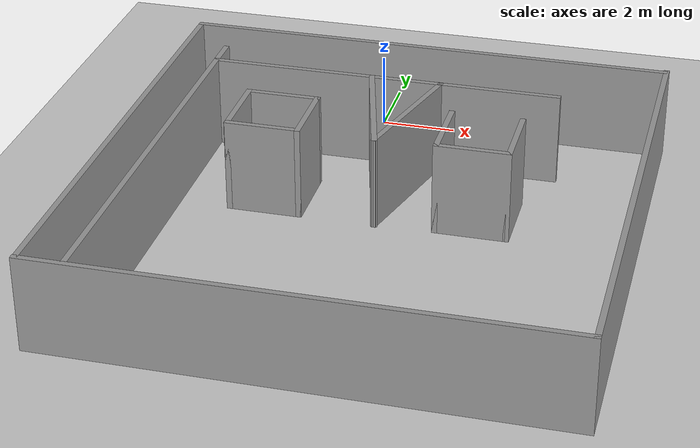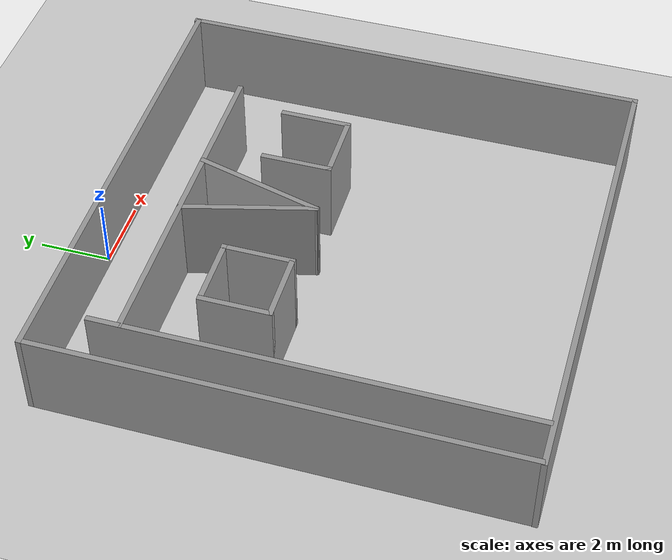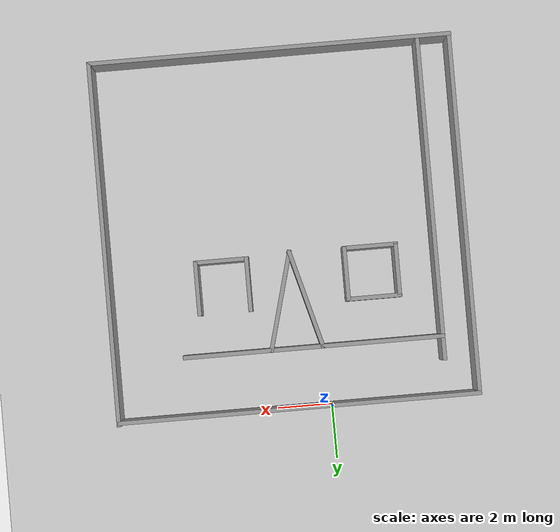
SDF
<sdf version="1.7">
 <world name="default">
  <light name="sun" type="directional">
   <pose>0 0 10 0 -0 0</pose>
   <diffuse>0.8 0.8 0.8 1</diffuse>
   <specular>0.2 0.2 0.2 1</specular>
   <attenuation>
    <range>1000</range>
    <constant>0.9</constant>
    <linear>0.01</linear>
    <quadratic>0.001</quadratic>
   </attenuation>
   <direction>-0.5 0.1 -0.9</direction>
   <spot><inner_angle>0</inner_angle><outer_angle>0</outer_angle><falloff>0</falloff></spot>
  </light>
  <model name="ground_plane">
   <static>1</static>
   <link name="link">
    <collision name="collision">
     <geometry><plane><normal>0 0 1</normal><size>100 100</size></plane></geometry>
     <surface><friction><ode><mu>100</mu><mu2>50</mu2></ode></friction></surface>
    </collision>
    <visual name="visual">
     <cast_shadows>0</cast_shadows>
     <geometry><plane><normal>0 0 1</normal><size>100 100</size></plane></geometry>
     <material>
      <script><uri>file://media/materials/scripts/gazebo.material</uri><name>Gazebo/Grey</name></script>
     </material>
    </visual>
   </link>
  </model>
  <gravity>0 0 -9.8</gravity>
  <magnetic_field>6e-06 2.3e-05 -4.2e-05</magnetic_field>
  <atmosphere type="adiabatic"/>
  <physics type="ode">
   <max_step_size>0.001</max_step_size>
   <real_time_factor>1</real_time_factor>
   <real_time_update_rate>1000</real_time_update_rate>
  </physics>
  <scene><ambient>0.4 0.4 0.4 1</ambient><background>0.7 0.7 0.7 1</background><shadows>1</shadows></scene>
  <audio><device>default</device></audio>
  <spherical_coordinates>
   <surface_model>EARTH_WGS84</surface_model>
   <latitude_deg>0</latitude_deg>
   <longitude_deg>0</longitude_deg>
   <elevation>0</elevation>
   <heading_deg>0</heading_deg>
  </spherical_coordinates>
  <model name="Map2">
   <pose>1.22507 -5.62717 0 0 -0 0</pose>
   <link name="Wall_0">
    <collision name="Wall_0_Collision">
     <geometry><box><size>13.1974 0.15 2.5</size></box></geometry>
     <pose>0 0 1.25 0 -0 0</pose>
    </collision>
    <visual name="Wall_0_Visual">
     <pose>0 0 1.25 0 -0 0</pose>
     <geometry><box><size>13.1974 0.15 2.5</size></box></geometry>
     <material>
      <script><uri>file://media/materials/scripts/gazebo.material</uri><name>Gazebo/Grey</name></script>
      <ambient>1 1 1 1</ambient>
     </material>
     <meta><layer>0</layer></meta>
    </visual>
    <pose>-0.01137 5.59443 0 0 -0 0</pose>
   </link>
   <link name="Wall_11">
    <collision name="Wall_11_Collision">
     <geometry><box><size>13.25 0.15 2.5</size></box></geometry>
     <pose>0 0 1.25 0 -0 0</pose>
    </collision>
    <visual name="Wall_11_Visual">
     <pose>0 0 1.25 0 -0 0</pose>
     <geometry><box><size>13.25 0.15 2.5</size></box></geometry>
     <material>
      <script><uri>file://media/materials/scripts/gazebo.material</uri><name>Gazebo/Grey</name></script>
      <ambient>1 1 1 1</ambient>
     </material>
     <meta><layer>0</layer></meta>
    </visual>
    <pose>6.55 -0.909426 0 0 -0 1.5708</pose>
   </link>
   <link name="Wall_22">
    <collision name="Wall_22_Collision">
     <geometry><box><size>9.5 0.15 2.5</size></box></geometry>
     <pose>0 0 1.25 0 -0 0</pose>
    </collision>
    <visual name="Wall_22_Visual">
     <pose>0 0 1.25 0 -0 0</pose>
     <geometry><box><size>9.5 0.15 2.5</size></box></geometry>
     <material>
      <script><uri>file://media/materials/scripts/gazebo.material</uri><name>Gazebo/Grey</name></script>
      <ambient>1 1 1 1</ambient>
     </material>
     <meta><layer>0</layer></meta>
    </visual>
    <pose>-0.710366 3.43632 0 0 -0 3.14159</pose>
   </link>
   <link name="Wall_26">
    <collision name="Wall_26_Collision">
     <geometry><box><size>11.75 0.15 2.5</size></box></geometry>
     <pose>0 0 1.25 0 -0 0</pose>
    </collision>
    <visual name="Wall_26_Visual">
     <pose>0 0 1.25 0 -0 0</pose>
     <geometry><box><size>11.75 0.15 2.5</size></box></geometry>
     <material>
      <script><uri>file://media/materials/scripts/gazebo.material</uri><name>Gazebo/Grey</name></script>
      <ambient>1 1 1 1</ambient>
     </material>
     <meta><layer>0</layer></meta>
    </visual>
    <pose>-5.38815 -1.55642 0 0 -0 -1.5708</pose>
   </link>
   <link name="Wall_29">
    <collision name="Wall_29_Collision">
     <geometry><box><size>2 0.15 2.5</size></box></geometry>
     <pose>0 0 1.25 0 -0 0</pose>
    </collision>
    <visual name="Wall_29_Visual">
     <pose>0 0 1.25 0 -0 0</pose>
     <geometry><box><size>2 0.15 2.5</size></box></geometry>
     <material>
      <script><uri>file://media/materials/scripts/gazebo.material</uri><name>Gazebo/Grey</name></script>
      <ambient>1 1 1 1</ambient>
     </material>
     <meta><layer>0</layer></meta>
    </visual>
    <pose>-3.96479 0.900008 0 0 -0 -1.5708</pose>
   </link>
   <link name="Wall_30">
    <collision name="Wall_30_Collision">
     <geometry><box><size>2 0.15 2.5</size></box></geometry>
     <pose>0 0 1.25 0 -0 0</pose>
    </collision>
    <visual name="Wall_30_Visual">
     <pose>0 0 1.25 0 -0 0</pose>
     <geometry><box><size>2 0.15 2.5</size></box></geometry>
     <material>
      <script><uri>file://media/materials/scripts/gazebo.material</uri><name>Gazebo/Grey</name></script>
      <ambient>1 1 1 1</ambient>
     </material>
     <meta><layer>0</layer></meta>
    </visual>
    <pose>-3.03041 -0.024992 0 0 -0 0</pose>
   </link>
   <link name="Wall_31">
    <collision name="Wall_31_Collision">
     <geometry><box><size>2 0.15 2.5</size></box></geometry>
     <pose>0 0 1.25 0 -0 0</pose>
    </collision>
    <visual name="Wall_31_Visual">
     <pose>0 0 1.25 0 -0 0</pose>
     <geometry><box><size>2 0.15 2.5</size></box></geometry>
     <material>
      <script><uri>file://media/materials/scripts/gazebo.material</uri><name>Gazebo/Grey</name></script>
      <ambient>1 1 1 1</ambient>
     </material>
     <meta><layer>0</layer></meta>
    </visual>
    <pose>-2.10541 0.900008 0 0 -0 1.5708</pose>
   </link>
   <link name="Wall_32">
    <collision name="Wall_32_Collision">
     <geometry><box><size>2 0.15 2.5</size></box></geometry>
     <pose>0 0 1.25 0 -0 0</pose>
    </collision>
    <visual name="Wall_32_Visual">
     <pose>0 0 1.25 0 -0 0</pose>
     <geometry><box><size>2 0.15 2.5</size></box></geometry>
     <material>
      <script><uri>file://media/materials/scripts/gazebo.material</uri><name>Gazebo/Grey</name></script>
      <ambient>1 1 1 1</ambient>
     </material>
     <meta><layer>0</layer></meta>
    </visual>
    <pose>-3.03041 1.82501 0 0 -0 3.14159</pose>
   </link>
   <link name="Wall_34">
    <collision name="Wall_34_Collision">
     <geometry><box><size>2 0.15 2.5</size></box></geometry>
     <pose>0 0 1.25 0 -0 0</pose>
    </collision>
    <visual name="Wall_34_Visual">
     <pose>0 0 1.25 0 -0 0</pose>
     <geometry><box><size>2 0.15 2.5</size></box></geometry>
     <material>
      <script><uri>file://media/materials/scripts/gazebo.material</uri><name>Gazebo/Grey</name></script>
      <ambient>1 1 1 1</ambient>
     </material>
     <meta><layer>0</layer></meta>
    </visual>
    <pose>1.45786 0.973824 0 0 -0 -1.5708</pose>
   </link>
   <link name="Wall_35">
    <collision name="Wall_35_Collision">
     <geometry><box><size>2 0.15 2.5</size></box></geometry>
     <pose>0 0 1.25 0 -0 0</pose>
    </collision>
    <visual name="Wall_35_Visual">
     <pose>0 0 1.25 0 -0 0</pose>
     <geometry><box><size>2 0.15 2.5</size></box></geometry>
     <material>
      <script><uri>file://media/materials/scripts/gazebo.material</uri><name>Gazebo/Grey</name></script>
      <ambient>1 1 1 1</ambient>
     </material>
     <meta><layer>0</layer></meta>
    </visual>
    <pose>2.38286 0.048823 0 0 -0 0</pose>
   </link>
   <link name="Wall_36">
    <collision name="Wall_36_Collision">
     <geometry><box><size>2 0.15 2.5</size></box></geometry>
     <pose>0 0 1.25 0 -0 0</pose>
    </collision>
    <visual name="Wall_36_Visual">
     <pose>0 0 1.25 0 -0 0</pose>
     <geometry><box><size>2 0.15 2.5</size></box></geometry>
     <material>
      <script><uri>file://media/materials/scripts/gazebo.material</uri><name>Gazebo/Grey</name></script>
      <ambient>1 1 1 1</ambient>
     </material>
     <meta><layer>0</layer></meta>
    </visual>
    <pose>3.30786 0.973824 0 0 -0 1.5708</pose>
   </link>
   <link name="Wall_39">
    <collision name="Wall_39_Collision">
     <geometry><box><size>3.75 0.15 2.5</size></box></geometry>
     <pose>0 0 1.25 0 -0 0</pose>
    </collision>
    <visual name="Wall_39_Visual">
     <pose>0 0 1.25 0 -0 0</pose>
     <geometry><box><size>3.75 0.15 2.5</size></box></geometry>
     <material>
      <script><uri>file://media/materials/scripts/gazebo.material</uri><name>Gazebo/Grey</name></script>
      <ambient>1 1 1 1</ambient>
     </material>
     <meta><layer>0</layer></meta>
    </visual>
    <pose>-0.573113 1.69031 0 0 -0 -1.309</pose>
   </link>
   <link name="Wall_40">
    <collision name="Wall_40_Collision">
     <geometry><box><size>3.75 0.15 2.5</size></box></geometry>
     <pose>0 0 1.25 0 -0 0</pose>
    </collision>
    <visual name="Wall_40_Visual">
     <pose>0 0 1.25 0 -0 0</pose>
     <geometry><box><size>3.75 0.15 2.5</size></box></geometry>
     <material>
      <script><uri>file://media/materials/scripts/gazebo.material</uri><name>Gazebo/Grey</name></script>
      <ambient>1 1 1 1</ambient>
     </material>
     <meta><layer>0</layer></meta>
    </visual>
    <pose>0.358636 1.69031 0 0 -0 1.309</pose>
   </link>
   <link name="Wall_7">
    <collision name="Wall_7_Collision">
     <geometry><box><size>13 0.15 2.5</size></box></geometry>
     <pose>0 0 1.25 0 -0 0</pose>
    </collision>
    <visual name="Wall_7_Visual">
     <pose>0 0 1.25 0 -0 0</pose>
     <geometry><box><size>13 0.15 2.5</size></box></geometry>
     <material>
      <script><uri>file://media/materials/scripts/gazebo.material</uri><name>Gazebo/Grey</name></script>
      <ambient>1 1 1 1</ambient>
     </material>
     <meta><layer>0</layer></meta>
    </visual>
    <pose>-6.53704 -0.975639 0 0 -0 1.5708</pose>
   </link>
   <link name="Wall_9">
    <collision name="Wall_9_Collision">
     <geometry><box><size>13.25 0.15 2.5</size></box></geometry>
     <pose>0 0 1.25 0 -0 0</pose>
    </collision>
    <visual name="Wall_9_Visual">
     <pose>0 0 1.25 0 -0 0</pose>
     <geometry><box><size>13.25 0.15 2.5</size></box></geometry>
     <material>
      <script><uri>file://media/materials/scripts/gazebo.material</uri><name>Gazebo/Grey</name></script>
      <ambient>1 1 1 1</ambient>
     </material>
     <meta><layer>0</layer></meta>
    </visual>
    <pose>-0 -7.45943 0 0 -0 0</pose>
   </link>
   <static>1</static>
  </model>
 </world>
</sdf>
